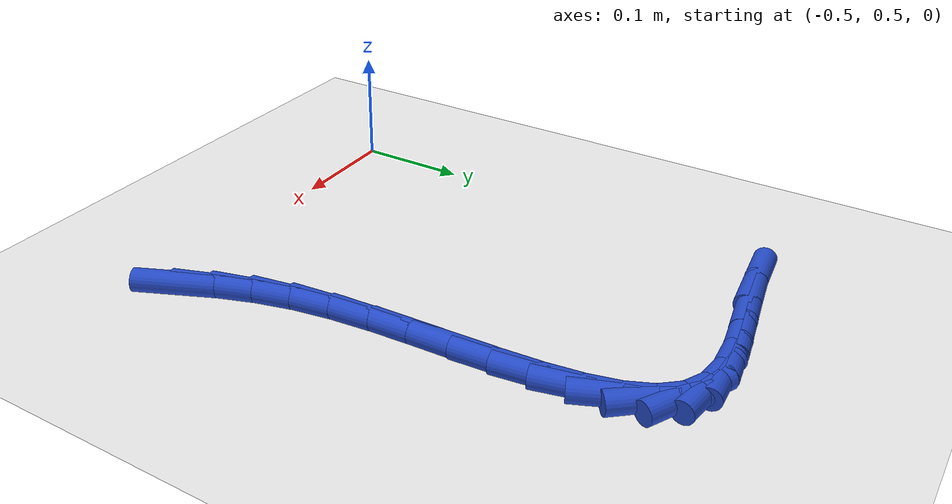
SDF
<sdf version="1.6">
 <world name="default">
  <model name="ground_plane">
   <static>1</static>
   <link name="link">
    <collision name="collision">
     <geometry><plane><normal>0 0 1</normal><size>100 100</size></plane></geometry>
     <surface><friction><ode><mu>100</mu><mu2>50</mu2></ode></friction></surface>
    </collision>
    <visual name="visual">
     <cast_shadows>0</cast_shadows>
     <geometry><plane><normal>0 0 1</normal><size>100 100</size></plane></geometry>
     <material>
      <script><uri>file://media/materials/scripts/gazebo.material</uri><name>Gazebo/WhiteGlow</name></script>
     </material>
    </visual>
   </link>
  </model>
  <model name="line">
   <link name="link_19">
    <pose>-0.20032402317972994 0.5243216690274213 0.01 0 1.57 -1.1511411305950747</pose>
    <collision name="collision">
     <geometry><cylinder><radius>0.01</radius><length>0.08</length></cylinder></geometry>
    </collision>
    <visual name="visual">
     <material>
      <script><name>Gazebo/Blue</name><uri>file://media/materials/scripts/gazebo.material</uri></script>
     </material>
     <geometry><cylinder><radius>0.01</radius><length>0.08</length></cylinder></geometry>
    </visual>
   </link>
   <link name="link_20">
    <pose>-0.2133124556804064 0.5534333338165908 0.01 0 1.57 -1.2298868734529083</pose>
    <collision name="collision">
     <geometry><cylinder><radius>0.01</radius><length>0.08</length></cylinder></geometry>
    </collision>
    <visual name="visual">
     <material>
      <script><name>Gazebo/Blue</name><uri>file://media/materials/scripts/gazebo.material</uri></script>
     </material>
     <geometry><cylinder><radius>0.01</radius><length>0.08</length></cylinder></geometry>
    </visual>
   </link>
   <link name="link_21">
    <pose>-0.2242508248288896 0.5842664461886848 0.01 0 1.57 -1.316834567938857</pose>
    <collision name="collision">
     <geometry><cylinder><radius>0.01</radius><length>0.08</length></cylinder></geometry>
    </collision>
    <visual name="visual">
     <material>
      <script><name>Gazebo/Blue</name><uri>file://media/materials/scripts/gazebo.material</uri></script>
     </material>
     <geometry><cylinder><radius>0.01</radius><length>0.08</length></cylinder></geometry>
    </visual>
   </link>
   <link name="link_22">
    <pose>-0.23276811671316955 0.6170799991529423 0.01 0 1.57 -1.4069695259916977</pose>
    <collision name="collision">
     <geometry><cylinder><radius>0.01</radius><length>0.08</length></cylinder></geometry>
    </collision>
    <visual name="visual">
     <material>
      <script><name>Gazebo/Blue</name><uri>file://media/materials/scripts/gazebo.material</uri></script>
     </material>
     <geometry><cylinder><radius>0.01</radius><length>0.08</length></cylinder></geometry>
    </visual>
   </link>
   <link name="link_23">
    <pose>-0.2385527625339994 0.652073059883295 0.01 0 1.57 -1.4776716845308662</pose>
    <collision name="collision">
     <geometry><cylinder><radius>0.01</radius><length>0.08</length></cylinder></geometry>
    </collision>
    <visual name="visual">
     <material>
      <script><name>Gazebo/Blue</name><uri>file://media/materials/scripts/gazebo.material</uri></script>
     </material>
     <geometry><cylinder><radius>0.01</radius><length>0.08</length></cylinder></geometry>
    </visual>
   </link>
   <link name="link_24">
    <pose>-0.2419785516439821 0.6887537950267123 0.01 0 1.57 -1.5206108015041493</pose>
    <collision name="collision">
     <geometry><cylinder><radius>0.01</radius><length>0.08</length></cylinder></geometry>
    </collision>
    <visual name="visual">
     <material>
      <script><name>Gazebo/Blue</name><uri>file://media/materials/scripts/gazebo.material</uri></script>
     </material>
     <geometry><cylinder><radius>0.01</radius><length>0.08</length></cylinder></geometry>
    </visual>
   </link>
   <link name="link_25">
    <pose>-0.2438587524204318 0.7261873382131283 0.01 0 1.57 -1.5397924425745155</pose>
    <collision name="collision">
     <geometry><cylinder><radius>0.01</radius><length>0.08</length></cylinder></geometry>
    </collision>
    <visual name="visual">
     <material>
      <script><name>Gazebo/Blue</name><uri>file://media/materials/scripts/gazebo.material</uri></script>
     </material>
     <geometry><cylinder><radius>0.01</radius><length>0.08</length></cylinder></geometry>
    </visual>
   </link>
   <link name="link_26">
    <pose>-0.24501383808825647 0.7634315599605046 0.01 0 1.57 -1.536184072782006</pose>
    <collision name="collision">
     <geometry><cylinder><radius>0.01</radius><length>0.08</length></cylinder></geometry>
    </collision>
    <visual name="visual">
     <material>
      <script><name>Gazebo/Blue</name><uri>file://media/materials/scripts/gazebo.material</uri></script>
     </material>
     <geometry><cylinder><radius>0.01</radius><length>0.08</length></cylinder></geometry>
    </visual>
   </link>
   <link name="link_27">
    <pose>-0.24626428187236388 0.7995443307868023 0.01 0 1.57 -1.5072414178572693</pose>
    <collision name="collision">
     <geometry><cylinder><radius>0.01</radius><length>0.08</length></cylinder></geometry>
    </collision>
    <visual name="visual">
     <material>
      <script><name>Gazebo/Blue</name><uri>file://media/materials/scripts/gazebo.material</uri></script>
     </material>
     <geometry><cylinder><radius>0.01</radius><length>0.08</length></cylinder></geometry>
    </visual>
   </link>
   <link name="link_28">
    <pose>-0.24843055699766195 0.8335835212099827 0.01 0 1.57 -1.4456592440203297</pose>
    <collision name="collision">
     <geometry><cylinder><radius>0.01</radius><length>0.08</length></cylinder></geometry>
    </collision>
    <visual name="visual">
     <material>
      <script><name>Gazebo/Blue</name><uri>file://media/materials/scripts/gazebo.material</uri></script>
     </material>
     <geometry><cylinder><radius>0.01</radius><length>0.08</length></cylinder></geometry>
    </visual>
   </link>
   <link name="link_29">
    <pose>-0.2523331366890584 0.8646070017480069 0.01 0 1.57 -1.3365232402149478</pose>
    <collision name="collision">
     <geometry><cylinder><radius>0.01</radius><length>0.08</length></cylinder></geometry>
    </collision>
    <visual name="visual">
     <material>
      <script><name>Gazebo/Blue</name><uri>file://media/materials/scripts/gazebo.material</uri></script>
     </material>
     <geometry><cylinder><radius>0.01</radius><length>0.08</length></cylinder></geometry>
    </visual>
   </link>
   <link name="link_30">
    <pose>-0.25879249417146105 0.8916726429188356 0.01 0 1.57 -1.1531297521584396</pose>
    <collision name="collision">
     <geometry><cylinder><radius>0.01</radius><length>0.08</length></cylinder></geometry>
    </collision>
    <visual name="visual">
     <material>
      <script><name>Gazebo/Blue</name><uri>file://media/materials/scripts/gazebo.material</uri></script>
     </material>
     <geometry><cylinder><radius>0.01</radius><length>0.08</length></cylinder></geometry>
    </visual>
   </link>
   <link name="link_31">
    <pose>-0.2686291026697778 0.9138383152404306 0.01 0 1.57 -0.8606641168503186</pose>
    <collision name="collision">
     <geometry><cylinder><radius>0.01</radius><length>0.08</length></cylinder></geometry>
    </collision>
    <visual name="visual">
     <material>
      <script><name>Gazebo/Blue</name><uri>file://media/materials/scripts/gazebo.material</uri></script>
     </material>
     <geometry><cylinder><radius>0.01</radius><length>0.08</length></cylinder></geometry>
    </visual>
   </link>
   <link name="link_32">
    <pose>-0.28266343540891653 0.9301618892307528 0.01 0 1.57 -0.4656129992218823</pose>
    <collision name="collision">
     <geometry><cylinder><radius>0.01</radius><length>0.08</length></cylinder></geometry>
    </collision>
    <visual name="visual">
     <material>
      <script><name>Gazebo/Blue</name><uri>file://media/materials/scripts/gazebo.material</uri></script>
     </material>
     <geometry><cylinder><radius>0.01</radius><length>0.08</length></cylinder></geometry>
    </visual>
   </link>
   <link name="link_33">
    <pose>-0.3016985785636309 0.9397262712240156 0.01 0 1.57 -0.12286702648049602</pose>
    <collision name="collision">
     <geometry><cylinder><radius>0.01</radius><length>0.08</length></cylinder></geometry>
    </collision>
    <visual name="visual">
     <material>
      <script><name>Gazebo/Blue</name><uri>file://media/materials/scripts/gazebo.material</uri></script>
     </material>
     <geometry><cylinder><radius>0.01</radius><length>0.08</length></cylinder></geometry>
    </visual>
   </link>
   <link name="link_34">
    <pose>-0.3257833309527112 0.9427004747133781 0.01 0 1.57 0.06975178542649269</pose>
    <collision name="collision">
     <geometry><cylinder><radius>0.01</radius><length>0.08</length></cylinder></geometry>
    </collision>
    <visual name="visual">
     <material>
      <script><name>Gazebo/Blue</name><uri>file://media/materials/scripts/gazebo.material</uri></script>
     </material>
     <geometry><cylinder><radius>0.01</radius><length>0.08</length></cylinder></geometry>
    </visual>
   </link>
   <link name="link_35">
    <pose>-0.3539387333841534 0.9407333939355419 0.01 0 1.57 0.16382966223878545</pose>
    <collision name="collision">
     <geometry><cylinder><radius>0.01</radius><length>0.08</length></cylinder></geometry>
    </collision>
    <visual name="visual">
     <material>
      <script><name>Gazebo/Blue</name><uri>file://media/materials/scripts/gazebo.material</uri></script>
     </material>
     <geometry><cylinder><radius>0.01</radius><length>0.08</length></cylinder></geometry>
    </visual>
   </link>
   <link name="link_36">
    <pose>-0.3851120993172481 0.9355800839962793 0.01 0 1.57 0.1961404768771493</pose>
    <collision name="collision">
     <geometry><cylinder><radius>0.01</radius><length>0.08</length></cylinder></geometry>
    </collision>
    <visual name="visual">
     <material>
      <script><name>Gazebo/Blue</name><uri>file://media/materials/scripts/gazebo.material</uri></script>
     </material>
     <geometry><cylinder><radius>0.01</radius><length>0.08</length></cylinder></geometry>
    </visual>
   </link>
   <link name="link_37">
    <pose>-0.41825074221128666 0.9289956000013634 0.01 0 1.57 0.18182765332703554</pose>
    <collision name="collision">
     <geometry><cylinder><radius>0.01</radius><length>0.08</length></cylinder></geometry>
    </collision>
    <visual name="visual">
     <material>
      <script><name>Gazebo/Blue</name><uri>file://media/materials/scripts/gazebo.material</uri></script>
     </material>
     <geometry><cylinder><radius>0.01</radius><length>0.08</length></cylinder></geometry>
    </visual>
   </link>
   <link name="link_38">
    <pose>-0.4523019755255591 0.9227349970565661 0.01 0 1.57 0.12269310326697963</pose>
    <collision name="collision">
     <geometry><cylinder><radius>0.01</radius><length>0.08</length></cylinder></geometry>
    </collision>
    <visual name="visual">
     <material>
      <script><name>Gazebo/Blue</name><uri>file://media/materials/scripts/gazebo.material</uri></script>
     </material>
     <geometry><cylinder><radius>0.01</radius><length>0.08</length></cylinder></geometry>
    </visual>
   </link>
  </model>
 </world>
</sdf>
